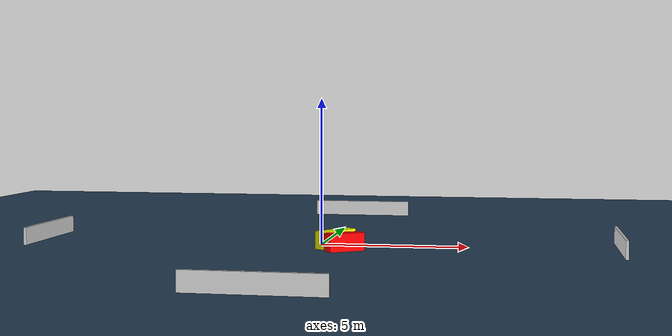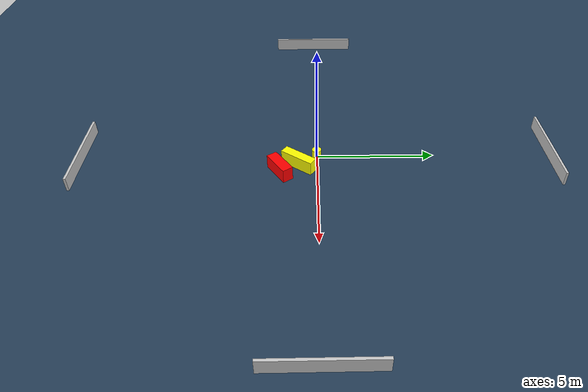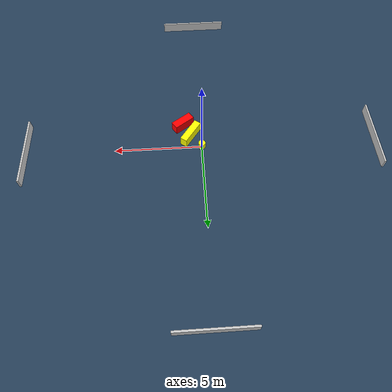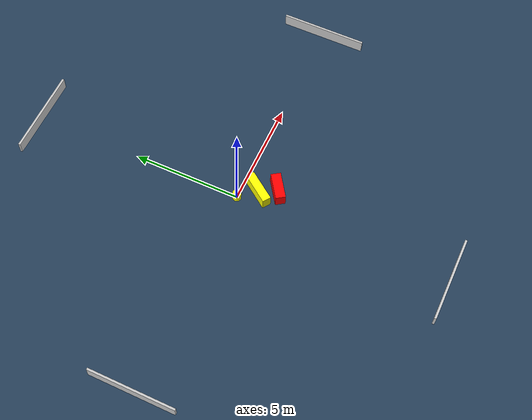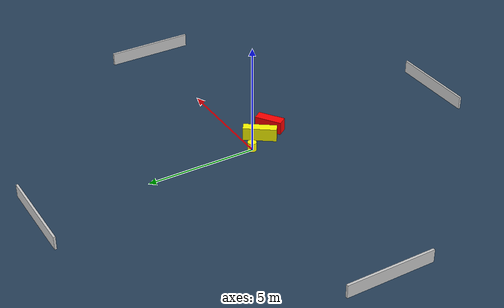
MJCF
<?xml version="1.0" ?>
<mujoco model="generated_environment">
  <option timestep="0.01" integrator="RK4" cone="elliptic"/>
  <default>
    <geom density="1"/>
  </default>
  <asset>
    <texture builtin="gradient" height="3072" name="skybox" rgb1="0.3 0.5 0.7" rgb2="0 0 0" type="skybox" width="512"/>
    <texture builtin="checker" height="300" name="groundplane" rgb1="0.2 0.3 0.4" rgb2="0.1 0.2 0.3" type="2d" width="300"/>
    <material name="groundplane" reflectance="0.2" texrepeat="5 5" texture="groundplane"/>
  </asset>
  <worldbody>
    <light dir="0 0 -1" directional="true" pos="0 0 1.5"/>
    <geom condim="3" friction="0.5 0.005 0.001" material="groundplane" name="floor" pos="0 0 0" size="0 0 0.05" type="plane"/>
    <body name="walls">
      <geom name="wall_1" condim="4" pos="-10.0 0.0 0.3" rgba="0.800000011920929 0.800000011920929 0.800000011920929 1.0" size="0.05 2.0 0.3" type="box"/>
      <geom name="wall_2" condim="4" pos="10.0 0.0 0.3" rgba="0.800000011920929 0.800000011920929 0.800000011920929 1.0" size="0.05 2.0 0.3" type="box"/>
      <geom name="wall_3" condim="4" pos="0.0 -10.0 0.3" rgba="0.800000011920929 0.800000011920929 0.800000011920929 1.0" size="2.0 0.05 0.3" type="box"/>
      <geom name="wall_4" condim="4" pos="0.0 10.0 0.3" rgba="0.800000011920929 0.800000011920929 0.800000011920929 1.0" size="2.0 0.05 0.3" type="box"/>
    </body>
    <body name="robot">
      <joint name="joint_x" type="slide" pos="0 0 0" axis="1 0 0"/>
      <joint name="joint_y" type="slide" pos="0 0 0" axis="0 1 0"/>
      <geom name="robot" type="cylinder" pos="0.0 0.0 0.2" size="0.2 0.2 0.0" mass="5.0" friction="1.0 0.005 0.0001" condim="4" rgba="1.0 1.0 0.0 1.0"/>
    </body>
    <body name="obstacle_1_movable">
      <geom name="obstacle_1_movable" condim="4" pos="0.6056686840145432 -0.765848716327608 0.3" euler="0 0 54.0449290660117" friction="0.0 0.005 0.001" rgba="1.0 1.0 0.0 1.0" size="0.7533272643382891 0.20159335534143133 0.3" type="box" mass="0.1"/>
      <joint type="free"/>
    </body>
    <body name="obstacle_2_static">
      <geom name="obstacle_2_static" condim="4" pos="1.030488570942745 -1.541938588286209 0.3" euler="0 0 124.23945988464612" friction="0.0 0.005 0.001" rgba="1.0 0.0 0.0 1.0" size="0.23101158335945787 0.6230689659995748 0.3" type="box"/>
    </body>
  </worldbody>
  <actuator>
    <motor name="actuator_x" joint="joint_x" gear="1" ctrlrange="-1 1"/>
    <motor name="actuator_y" joint="joint_y" gear="1" ctrlrange="-1 1"/>
  </actuator>
</mujoco>
